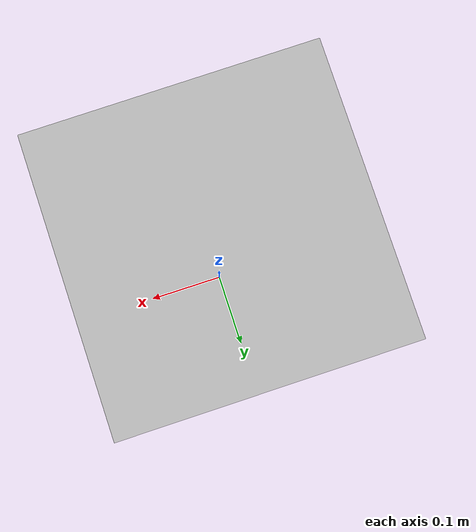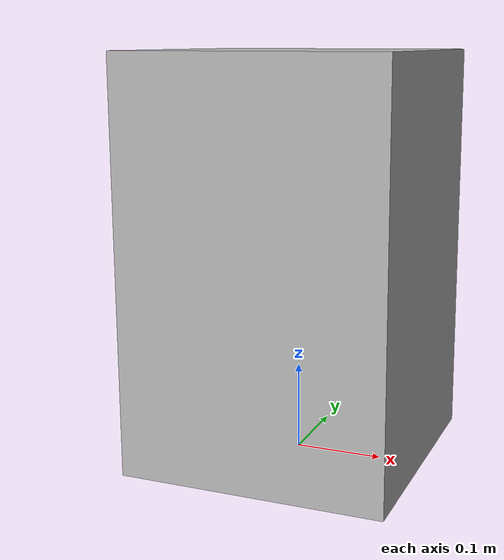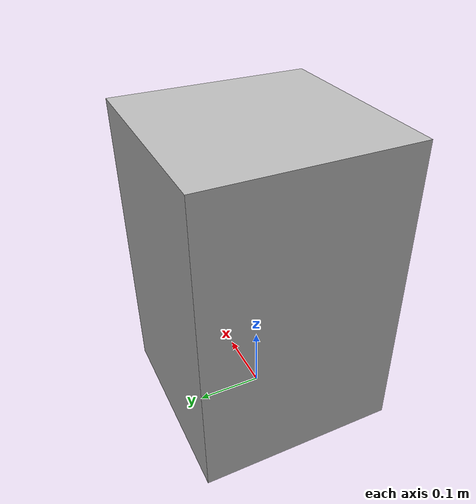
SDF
<?xml version="1.0"?>
<sdf version="1.6">
  <model name="rwc2018/planter">
    <link name="1_link">
      <collision name="1_col">
        <geometry>
          <box>
            <size>0.3 0.3 0.46</size>
          </box>
        </geometry>
      </collision>
      <visual name="1_vis">
        <geometry>
          <box>
            <size>0.3 0.3 0.46</size>
          </box>
        </geometry>
      </visual>
      <pose>0 0 0.23 0 0 0</pose>
    </link>
    <link name="on_top_of">
      <virtual_volume name="on_top_of_vv">
        <geometry>
          <box>
            <size>0.28 0.24 0.25</size>
          </box>
        </geometry>
        <pose>0.0 0.0 0.605 0 0 0</pose>
      </virtual_volume>
    </link>
    <link name="in_front_of">
      <virtual_volume name="in_front_of_vv">
        <geometry>
          <box>
            <size>0.2 0.1 0.01</size>
          </box>
        </geometry>
        <pose>0.65 0.0 0.005 0 0 0</pose>
      </virtual_volume>
    </link>
    <static>true</static>
  </model>
</sdf>
